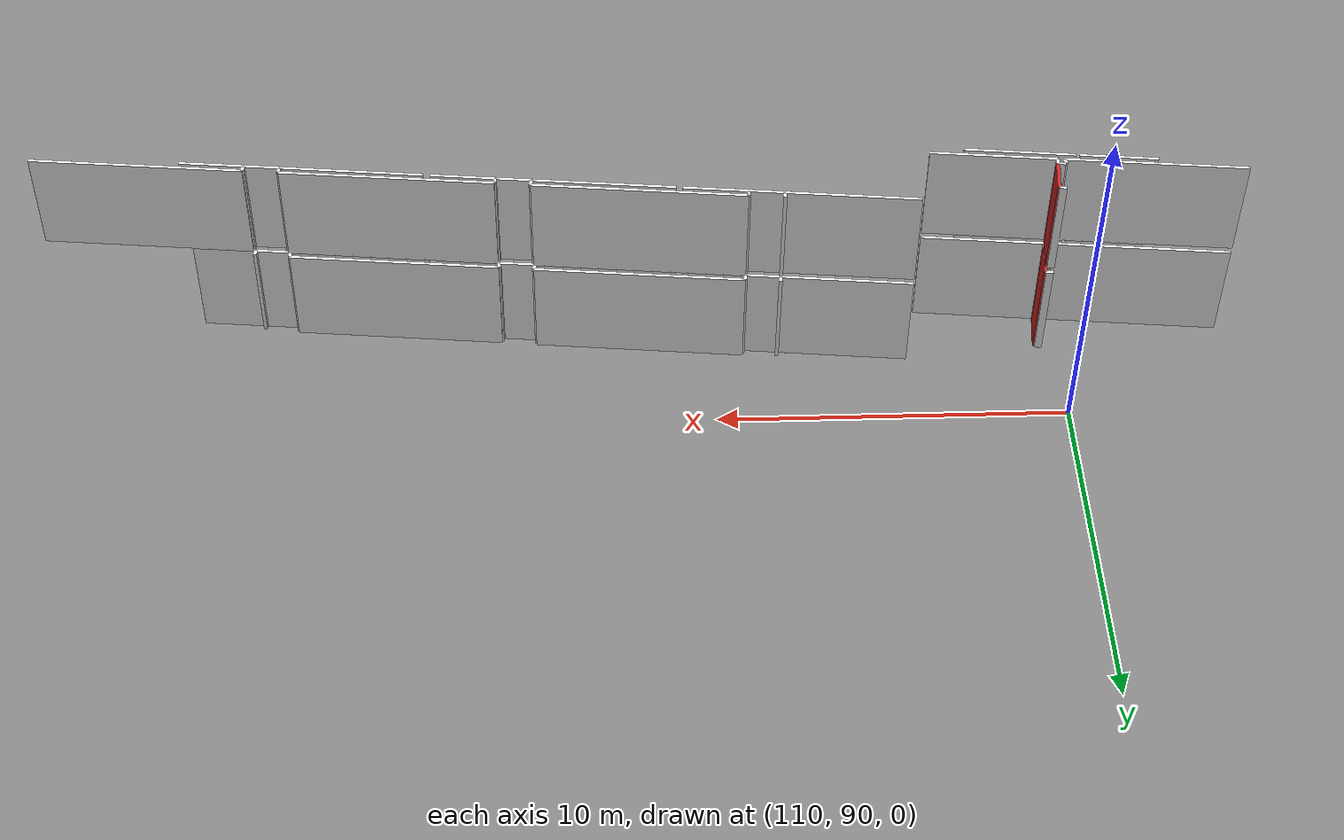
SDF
<sdf version="1.6">
 <world name="default">
  <model name="wall_110.6_86.8_0.0">
   <static>true</static>
   <pose>110.55999999999767 86.81499999994412 1.5 0 0 1.4701276746829237</pose>
   <link name="link">
    <visual name="visual">
     <geometry><box><size>0.9950376879485058 0.1 3</size></box></geometry>
     <material>
      <script><uri>file://media/materials/scripts/gazebo.material</uri><name>Gazebo/Red</name></script>
     </material>
    </visual>
   </link>
  </model>
  <model name="wall_134.0_85.7_0.0">
   <static>true</static>
   <pose>133.98000000001048 85.69999999995343 1.5 0 0 3.0419240010057806</pose>
   <link name="link">
    <visual name="visual">
     <geometry><box><size>1.808977611806857 0.1 3</size></box></geometry>
     <material>
      <script><uri>file://media/materials/scripts/gazebo.material</uri><name>Gazebo/White</name></script>
     </material>
    </visual>
   </link>
  </model>
  <model name="wall_132.6_85.8_0.0">
   <static>true</static>
   <pose>132.5800000000163 85.84000000008382 1.5 0 0 3.041924001006421</pose>
   <link name="link">
    <visual name="visual">
     <geometry><box><size>1.004987562121356 0.1 3</size></box></geometry>
     <material>
      <script><uri>file://media/materials/scripts/gazebo.material</uri><name>Gazebo/White</name></script>
     </material>
    </visual>
   </link>
  </model>
  <model name="wall_130.1_86.1_0.0">
   <static>true</static>
   <pose>130.0899999999965 86.09499999997206 1.5 0 0 3.03893967778239</pose>
   <link name="link">
    <visual name="visual">
     <geometry><box><size>4.001062358931114 0.1 3</size></box></geometry>
     <material>
      <script><uri>file://media/materials/scripts/gazebo.material</uri><name>Gazebo/White</name></script>
     </material>
    </visual>
   </link>
  </model>
  <model name="wall_108.8_86.1_0.0">
   <static>true</static>
   <pose>108.77499999999418 86.10000000009313 1.5 0 0 -0.10103726465713746</pose>
   <link name="link">
    <visual name="visual">
     <geometry><box><size>2.18112356362828 0.1 3</size></box></geometry>
     <material>
      <script><uri>file://media/materials/scripts/gazebo.material</uri><name>Gazebo/White</name></script>
     </material>
    </visual>
   </link>
  </model>
  <model name="wall_111.5_85.8_0.0">
   <static>true</static>
   <pose>111.50500000000466 85.82000000006519 1.5 0 0 -0.10319202030580511</pose>
   <link name="link">
    <visual name="visual">
     <geometry><box><size>3.1065253901571874 0.1 3</size></box></geometry>
     <material>
      <script><uri>file://media/materials/scripts/gazebo.material</uri><name>Gazebo/White</name></script>
     </material>
    </visual>
   </link>
  </model>
  <model name="wall_112.3_85.9_0.0">
   <static>true</static>
   <pose>112.25500000000466 85.94999999995343 1.5 0 0 3.039961019922028</pose>
   <link name="link">
    <visual name="visual">
     <geometry><box><size>3.548309456643174 0.1 3</size></box></geometry>
     <material>
      <script><uri>file://media/materials/scripts/gazebo.material</uri><name>Gazebo/White</name></script>
     </material>
    </visual>
   </link>
  </model>
  <model name="wall_110.5_86.2_0.0">
   <static>true</static>
   <pose>110.5 86.2249999998603 1.5 0 0 1.4659193879370842</pose>
   <link name="link">
    <visual name="visual">
     <geometry><box><size>0.19104973169180559 0.1 3</size></box></geometry>
     <material>
      <script><uri>file://media/materials/scripts/gazebo.material</uri><name>Gazebo/White</name></script>
     </material>
    </visual>
   </link>
  </model>
  <model name="wall_110.5_87.3_0.0">
   <static>true</static>
   <pose>110.50500000000466 87.32000000006519 1.5 0 0 -0.09495170644739931</pose>
   <link name="link">
    <visual name="visual">
     <geometry><box><size>0.21095023106197072 0.1 3</size></box></geometry>
     <material>
      <script><uri>file://media/materials/scripts/gazebo.material</uri><name>Gazebo/White</name></script>
     </material>
    </visual>
   </link>
  </model>
  <model name="wall_110.4_86.3_0.0">
   <static>true</static>
   <pose>110.40499999999884 86.32999999984168 1.5 0 0 3.0466409471685547</pose>
   <link name="link">
    <visual name="visual">
     <geometry><box><size>0.21095023111991618 0.1 3</size></box></geometry>
     <material>
      <script><uri>file://media/materials/scripts/gazebo.material</uri><name>Gazebo/White</name></script>
     </material>
    </visual>
   </link>
  </model>
  <model name="wall_110.3_86.2_0.0">
   <static>true</static>
   <pose>110.29000000000815 86.24499999987893 1.5 0 0 -1.6756732653497102</pose>
   <link name="link">
    <visual name="visual">
     <geometry><box><size>0.19104973168571213 0.1 3</size></box></geometry>
     <material>
      <script><uri>file://media/materials/scripts/gazebo.material</uri><name>Gazebo/White</name></script>
     </material>
    </visual>
   </link>
  </model>
  <model name="wall_107.8_86.4_0.0">
   <static>true</static>
   <pose>107.75 86.40500000002794 1.5 0 0 3.041141375502892</pose>
   <link name="link">
    <visual name="visual">
     <geometry><box><size>5.08563663672627 0.1 3</size></box></geometry>
     <material>
      <script><uri>file://media/materials/scripts/gazebo.material</uri><name>Gazebo/White</name></script>
     </material>
    </visual>
   </link>
  </model>
  <model name="wall_127.0_86.4_0.0">
   <static>true</static>
   <pose>127.00500000000466 86.40999999991618 1.5 0 0 3.041370903719256</pose>
   <link name="link">
    <visual name="visual">
     <geometry><box><size>1.7990275151296922 0.1 3</size></box></geometry>
     <material>
      <script><uri>file://media/materials/scripts/gazebo.material</uri><name>Gazebo/White</name></script>
     </material>
    </visual>
   </link>
  </model>
  <model name="wall_125.6_86.6_0.0">
   <static>true</static>
   <pose>125.60999999998603 86.55000000004657 1.5 0 0 3.041924001006421</pose>
   <link name="link">
    <visual name="visual">
     <geometry><box><size>1.004987562121356 0.1 3</size></box></geometry>
     <material>
      <script><uri>file://media/materials/scripts/gazebo.material</uri><name>Gazebo/White</name></script>
     </material>
    </visual>
   </link>
  </model>
  <model name="wall_123.1_86.8_0.0">
   <static>true</static>
   <pose>123.11499999999069 86.80000000004657 1.5 0 0 3.0416758621687854</pose>
   <link name="link">
    <visual name="visual">
     <geometry><box><size>4.009999999981443 0.1 3</size></box></geometry>
     <material>
      <script><uri>file://media/materials/scripts/gazebo.material</uri><name>Gazebo/White</name></script>
     </material>
    </visual>
   </link>
  </model>
  <model name="wall_120.0_87.1_0.0">
   <static>true</static>
   <pose>120.0450000000128 87.11000000010245 1.5 0 0 3.042471046904084</pose>
   <link name="link">
    <visual name="visual">
     <geometry><box><size>1.8189282558836457 0.1 3</size></box></geometry>
     <material>
      <script><uri>file://media/materials/scripts/gazebo.material</uri><name>Gazebo/White</name></script>
     </material>
    </visual>
   </link>
  </model>
  <model name="wall_118.6_87.2_0.0">
   <static>true</static>
   <pose>118.64000000001397 87.25 1.5 0 0 3.0419240014674718</pose>
   <link name="link">
    <visual name="visual">
     <geometry><box><size>1.004987562075021 0.1 3</size></box></geometry>
     <material>
      <script><uri>file://media/materials/scripts/gazebo.material</uri><name>Gazebo/White</name></script>
     </material>
    </visual>
   </link>
  </model>
  <model name="wall_116.3_87.5_0.0">
   <static>true</static>
   <pose>116.27499999999418 87.48999999999069 1.5 0 0 3.040066253673752</pose>
   <link name="link">
    <visual name="visual">
     <geometry><box><size>3.7493066026352446 0.1 3</size></box></geometry>
     <material>
      <script><uri>file://media/materials/scripts/gazebo.material</uri><name>Gazebo/White</name></script>
     </material>
    </visual>
   </link>
  </model>
  <model name="wall_119.1_87.3_0.0">
   <static>true</static>
   <pose>119.14500000001863 87.29500000015832 1.5 0 0 1.518213265119637</pose>
   <link name="link">
    <visual name="visual">
     <geometry><box><size>0.19026297584909185 0.1 3</size></box></geometry>
     <material>
      <script><uri>file://media/materials/scripts/gazebo.material</uri><name>Gazebo/White</name></script>
     </material>
    </visual>
   </link>
  </model>
  <model name="wall_122.1_87.1_0.0">
   <static>true</static>
   <pose>122.14000000001397 87.09000000008382 1.5 0 0 -0.09999977832260272</pose>
   <link name="link">
    <visual name="visual">
     <geometry><box><size>6.010024958341603 0.1 3</size></box></geometry>
     <material>
      <script><uri>file://media/materials/scripts/gazebo.material</uri><name>Gazebo/White</name></script>
     </material>
    </visual>
   </link>
  </model>
  <model name="wall_125.1_86.7_0.0">
   <static>true</static>
   <pose>125.11999999999534 86.69500000006519 1.5 0 0 -1.675673265652709</pose>
   <link name="link">
    <visual name="visual">
     <geometry><box><size>0.19104973169180559 0.1 3</size></box></geometry>
     <material>
      <script><uri>file://media/materials/scripts/gazebo.material</uri><name>Gazebo/White</name></script>
     </material>
    </visual>
   </link>
  </model>
  <model name="wall_126.1_86.6_0.0">
   <static>true</static>
   <pose>126.11999999999534 86.59000000008382 1.5 0 0 1.460139105621001</pose>
   <link name="link">
    <visual name="visual">
     <geometry><box><size>0.18110770293141804 0.1 3</size></box></geometry>
     <material>
      <script><uri>file://media/materials/scripts/gazebo.material</uri><name>Gazebo/White</name></script>
     </material>
    </visual>
   </link>
  </model>
  <model name="wall_129.1_86.4_0.0">
   <static>true</static>
   <pose>129.1149999999907 86.38000000012107 1.5 0 0 -0.10016616490383481</pose>
   <link name="link">
    <visual name="visual">
     <geometry><box><size>6.00007499951277 0.1 3</size></box></geometry>
     <material>
      <script><uri>file://media/materials/scripts/gazebo.material</uri><name>Gazebo/White</name></script>
     </material>
    </visual>
   </link>
  </model>
  <model name="wall_132.1_86.0_0.0">
   <static>true</static>
   <pose>132.0899999999965 85.98500000010245 1.5 0 0 -1.6756732653497102</pose>
   <link name="link">
    <visual name="visual">
     <geometry><box><size>0.19104973168571213 0.1 3</size></box></geometry>
     <material>
      <script><uri>file://media/materials/scripts/gazebo.material</uri><name>Gazebo/White</name></script>
     </material>
    </visual>
   </link>
  </model>
  <model name="wall_133.1_85.9_0.0">
   <static>true</static>
   <pose>133.0899999999965 85.88500000000931 1.5 0 0 1.4659193882400832</pose>
   <link name="link">
    <visual name="visual">
     <geometry><box><size>0.19104973168571213 0.1 3</size></box></geometry>
     <material>
      <script><uri>file://media/materials/scripts/gazebo.material</uri><name>Gazebo/White</name></script>
     </material>
    </visual>
   </link>
  </model>
  <model name="wall_118.1_87.4_0.0">
   <static>true</static>
   <pose>118.14999999999418 87.39500000001863 1.5 0 0 -1.6756732650945534</pose>
   <link name="link">
    <visual name="visual">
     <geometry><box><size>0.19104973214881482 0.1 3</size></box></geometry>
     <material>
      <script><uri>file://media/materials/scripts/gazebo.material</uri><name>Gazebo/White</name></script>
     </material>
    </visual>
   </link>
  </model>
  <model name="wall_110.6_86.8_3.2">
   <static>true</static>
   <pose>110.55999999999767 86.81499999994412 4.7 0 0 1.4701276746829237</pose>
   <link name="link">
    <visual name="visual">
     <geometry><box><size>0.9950376879485058 0.1 3</size></box></geometry>
     <material>
      <script><uri>file://media/materials/scripts/gazebo.material</uri><name>Gazebo/Red</name></script>
     </material>
    </visual>
   </link>
  </model>
  <model name="wall_134.0_85.7_3.2">
   <static>true</static>
   <pose>133.98000000001048 85.69999999995343 4.7 0 0 3.0419240010057806</pose>
   <link name="link">
    <visual name="visual">
     <geometry><box><size>1.808977611806857 0.1 3</size></box></geometry>
     <material>
      <script><uri>file://media/materials/scripts/gazebo.material</uri><name>Gazebo/White</name></script>
     </material>
    </visual>
   </link>
  </model>
  <model name="wall_132.6_85.8_3.2">
   <static>true</static>
   <pose>132.5800000000163 85.84000000008382 4.7 0 0 3.041924001006421</pose>
   <link name="link">
    <visual name="visual">
     <geometry><box><size>1.004987562121356 0.1 3</size></box></geometry>
     <material>
      <script><uri>file://media/materials/scripts/gazebo.material</uri><name>Gazebo/White</name></script>
     </material>
    </visual>
   </link>
  </model>
  <model name="wall_130.1_86.1_3.2">
   <static>true</static>
   <pose>130.0899999999965 86.09499999997206 4.7 0 0 3.03893967778239</pose>
   <link name="link">
    <visual name="visual">
     <geometry><box><size>4.001062358931114 0.1 3</size></box></geometry>
     <material>
      <script><uri>file://media/materials/scripts/gazebo.material</uri><name>Gazebo/White</name></script>
     </material>
    </visual>
   </link>
  </model>
  <model name="wall_108.8_86.1_3.2">
   <static>true</static>
   <pose>108.77499999999418 86.10000000009313 4.7 0 0 -0.10103726465713746</pose>
   <link name="link">
    <visual name="visual">
     <geometry><box><size>2.18112356362828 0.1 3</size></box></geometry>
     <material>
      <script><uri>file://media/materials/scripts/gazebo.material</uri><name>Gazebo/White</name></script>
     </material>
    </visual>
   </link>
  </model>
  <model name="wall_111.5_85.8_3.2">
   <static>true</static>
   <pose>111.50500000000466 85.82000000006519 4.7 0 0 -0.10319202030580511</pose>
   <link name="link">
    <visual name="visual">
     <geometry><box><size>3.1065253901571874 0.1 3</size></box></geometry>
     <material>
      <script><uri>file://media/materials/scripts/gazebo.material</uri><name>Gazebo/White</name></script>
     </material>
    </visual>
   </link>
  </model>
  <model name="wall_112.3_85.9_3.2">
   <static>true</static>
   <pose>112.25500000000466 85.94999999995343 4.7 0 0 3.039961019922028</pose>
   <link name="link">
    <visual name="visual">
     <geometry><box><size>3.548309456643174 0.1 3</size></box></geometry>
     <material>
      <script><uri>file://media/materials/scripts/gazebo.material</uri><name>Gazebo/White</name></script>
     </material>
    </visual>
   </link>
  </model>
  <model name="wall_110.5_86.2_3.2">
   <static>true</static>
   <pose>110.5 86.2249999998603 4.7 0 0 1.4659193879370842</pose>
   <link name="link">
    <visual name="visual">
     <geometry><box><size>0.19104973169180559 0.1 3</size></box></geometry>
     <material>
      <script><uri>file://media/materials/scripts/gazebo.material</uri><name>Gazebo/White</name></script>
     </material>
    </visual>
   </link>
  </model>
  <model name="wall_110.5_87.3_3.2">
   <static>true</static>
   <pose>110.50500000000466 87.32000000006519 4.7 0 0 -0.09495170644739931</pose>
   <link name="link">
    <visual name="visual">
     <geometry><box><size>0.21095023106197072 0.1 3</size></box></geometry>
     <material>
      <script><uri>file://media/materials/scripts/gazebo.material</uri><name>Gazebo/White</name></script>
     </material>
    </visual>
   </link>
  </model>
  <model name="wall_110.4_86.3_3.2">
   <static>true</static>
   <pose>110.40499999999884 86.32999999984168 4.7 0 0 3.0466409471685547</pose>
   <link name="link">
    <visual name="visual">
     <geometry><box><size>0.21095023111991618 0.1 3</size></box></geometry>
     <material>
      <script><uri>file://media/materials/scripts/gazebo.material</uri><name>Gazebo/White</name></script>
     </material>
    </visual>
   </link>
  </model>
  <model name="wall_110.3_86.2_3.2">
   <static>true</static>
   <pose>110.29000000000815 86.24499999987893 4.7 0 0 -1.6756732653497102</pose>
   <link name="link">
    <visual name="visual">
     <geometry><box><size>0.19104973168571213 0.1 3</size></box></geometry>
     <material>
      <script><uri>file://media/materials/scripts/gazebo.material</uri><name>Gazebo/White</name></script>
     </material>
    </visual>
   </link>
  </model>
  <model name="wall_107.8_86.4_3.2">
   <static>true</static>
   <pose>107.75 86.40500000002794 4.7 0 0 3.041141375502892</pose>
   <link name="link">
    <visual name="visual">
     <geometry><box><size>5.08563663672627 0.1 3</size></box></geometry>
     <material>
      <script><uri>file://media/materials/scripts/gazebo.material</uri><name>Gazebo/White</name></script>
     </material>
    </visual>
   </link>
  </model>
  <model name="wall_127.0_86.4_3.2">
   <static>true</static>
   <pose>127.00500000000466 86.40999999991618 4.7 0 0 3.041370903719256</pose>
   <link name="link">
    <visual name="visual">
     <geometry><box><size>1.7990275151296922 0.1 3</size></box></geometry>
     <material>
      <script><uri>file://media/materials/scripts/gazebo.material</uri><name>Gazebo/White</name></script>
     </material>
    </visual>
   </link>
  </model>
  <model name="wall_125.6_86.6_3.2">
   <static>true</static>
   <pose>125.60999999998603 86.55000000004657 4.7 0 0 3.041924001006421</pose>
   <link name="link">
    <visual name="visual">
     <geometry><box><size>1.004987562121356 0.1 3</size></box></geometry>
     <material>
      <script><uri>file://media/materials/scripts/gazebo.material</uri><name>Gazebo/White</name></script>
     </material>
    </visual>
   </link>
  </model>
  <model name="wall_123.1_86.8_3.2">
   <static>true</static>
   <pose>123.11499999999069 86.80000000004657 4.7 0 0 3.0416758621687854</pose>
   <link name="link">
    <visual name="visual">
     <geometry><box><size>4.009999999981443 0.1 3</size></box></geometry>
     <material>
      <script><uri>file://media/materials/scripts/gazebo.material</uri><name>Gazebo/White</name></script>
     </material>
    </visual>
   </link>
  </model>
  <model name="wall_120.0_87.1_3.2">
   <static>true</static>
   <pose>120.0450000000128 87.11000000010245 4.7 0 0 3.042471046904084</pose>
   <link name="link">
    <visual name="visual">
     <geometry><box><size>1.8189282558836457 0.1 3</size></box></geometry>
     <material>
      <script><uri>file://media/materials/scripts/gazebo.material</uri><name>Gazebo/White</name></script>
     </material>
    </visual>
   </link>
  </model>
  <model name="wall_118.6_87.2_3.2">
   <static>true</static>
   <pose>118.64000000001397 87.25 4.7 0 0 3.0419240014674718</pose>
   <link name="link">
    <visual name="visual">
     <geometry><box><size>1.004987562075021 0.1 3</size></box></geometry>
     <material>
      <script><uri>file://media/materials/scripts/gazebo.material</uri><name>Gazebo/White</name></script>
     </material>
    </visual>
   </link>
  </model>
  <model name="wall_116.3_87.5_3.2">
   <static>true</static>
   <pose>116.27499999999418 87.48999999999069 4.7 0 0 3.040066253673752</pose>
   <link name="link">
    <visual name="visual">
     <geometry><box><size>3.7493066026352446 0.1 3</size></box></geometry>
     <material>
      <script><uri>file://media/materials/scripts/gazebo.material</uri><name>Gazebo/White</name></script>
     </material>
    </visual>
   </link>
  </model>
  <model name="wall_119.1_87.3_3.2">
   <static>true</static>
   <pose>119.14500000001863 87.29500000015832 4.7 0 0 1.518213265119637</pose>
   <link name="link">
    <visual name="visual">
     <geometry><box><size>0.19026297584909185 0.1 3</size></box></geometry>
     <material>
      <script><uri>file://media/materials/scripts/gazebo.material</uri><name>Gazebo/White</name></script>
     </material>
    </visual>
   </link>
  </model>
  <model name="wall_122.1_87.1_3.2">
   <static>true</static>
   <pose>122.14000000001397 87.09000000008382 4.7 0 0 -0.09999977832260272</pose>
   <link name="link">
    <visual name="visual">
     <geometry><box><size>6.010024958341603 0.1 3</size></box></geometry>
     <material>
      <script><uri>file://media/materials/scripts/gazebo.material</uri><name>Gazebo/White</name></script>
     </material>
    </visual>
   </link>
  </model>
  <model name="wall_125.1_86.7_3.2">
   <static>true</static>
   <pose>125.11999999999534 86.69500000006519 4.7 0 0 -1.675673265652709</pose>
   <link name="link">
    <visual name="visual">
     <geometry><box><size>0.19104973169180559 0.1 3</size></box></geometry>
     <material>
      <script><uri>file://media/materials/scripts/gazebo.material</uri><name>Gazebo/White</name></script>
     </material>
    </visual>
   </link>
  </model>
  <model name="wall_126.1_86.6_3.2">
   <static>true</static>
   <pose>126.11999999999534 86.59000000008382 4.7 0 0 1.460139105621001</pose>
   <link name="link">
    <visual name="visual">
     <geometry><box><size>0.18110770293141804 0.1 3</size></box></geometry>
     <material>
      <script><uri>file://media/materials/scripts/gazebo.material</uri><name>Gazebo/White</name></script>
     </material>
    </visual>
   </link>
  </model>
  <model name="wall_129.1_86.4_3.2">
   <static>true</static>
   <pose>129.1149999999907 86.38000000012107 4.7 0 0 -0.10016616490383481</pose>
   <link name="link">
    <visual name="visual">
     <geometry><box><size>6.00007499951277 0.1 3</size></box></geometry>
     <material>
      <script><uri>file://media/materials/scripts/gazebo.material</uri><name>Gazebo/White</name></script>
     </material>
    </visual>
   </link>
  </model>
  <model name="wall_132.1_86.0_3.2">
   <static>true</static>
   <pose>132.0899999999965 85.98500000010245 4.7 0 0 -1.6756732653497102</pose>
   <link name="link">
    <visual name="visual">
     <geometry><box><size>0.19104973168571213 0.1 3</size></box></geometry>
     <material>
      <script><uri>file://media/materials/scripts/gazebo.material</uri><name>Gazebo/White</name></script>
     </material>
    </visual>
   </link>
  </model>
  <model name="wall_133.1_85.9_3.2">
   <static>true</static>
   <pose>133.0899999999965 85.88500000000931 4.7 0 0 1.4659193882400832</pose>
   <link name="link">
    <visual name="visual">
     <geometry><box><size>0.19104973168571213 0.1 3</size></box></geometry>
     <material>
      <script><uri>file://media/materials/scripts/gazebo.material</uri><name>Gazebo/White</name></script>
     </material>
    </visual>
   </link>
  </model>
  <model name="wall_136.1_85.7_3.2">
   <static>true</static>
   <pose>136.08499999999185 85.67999999993481 4.7 0 0 -0.1001661649028647</pose>
   <link name="link">
    <visual name="visual">
     <geometry><box><size>6.0000749995706855 0.1 3</size></box></geometry>
     <material>
      <script><uri>file://media/materials/scripts/gazebo.material</uri><name>Gazebo/White</name></script>
     </material>
    </visual>
   </link>
  </model>
  <model name="wall_118.1_87.4_3.2">
   <static>true</static>
   <pose>118.14999999999418 87.39500000001863 4.7 0 0 -1.6756732650945534</pose>
   <link name="link">
    <visual name="visual">
     <geometry><box><size>0.19104973214881482 0.1 3</size></box></geometry>
     <material>
      <script><uri>file://media/materials/scripts/gazebo.material</uri><name>Gazebo/White</name></script>
     </material>
    </visual>
   </link>
  </model>
 </world>
</sdf>
